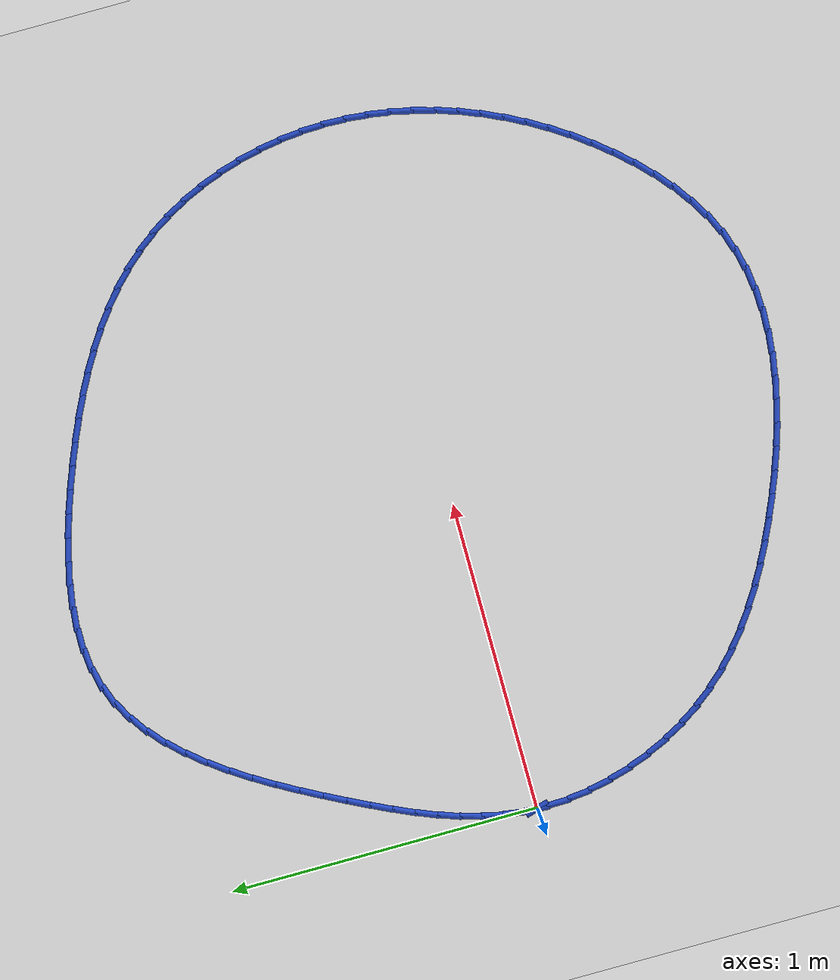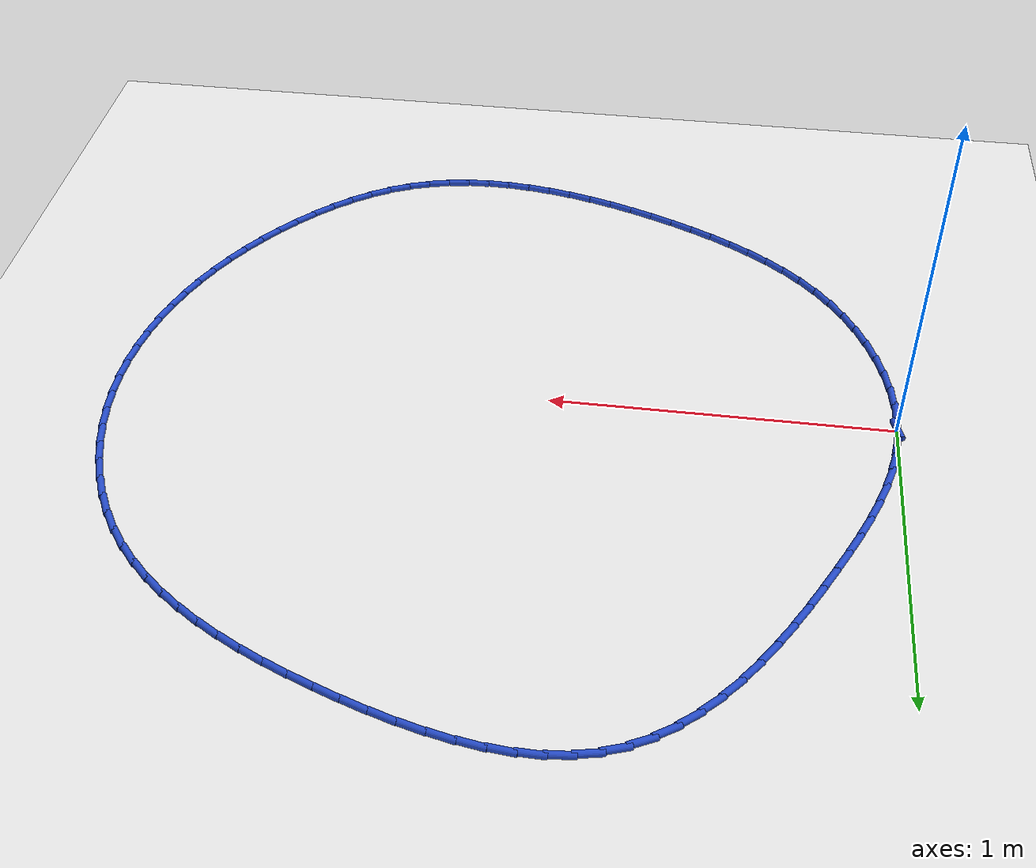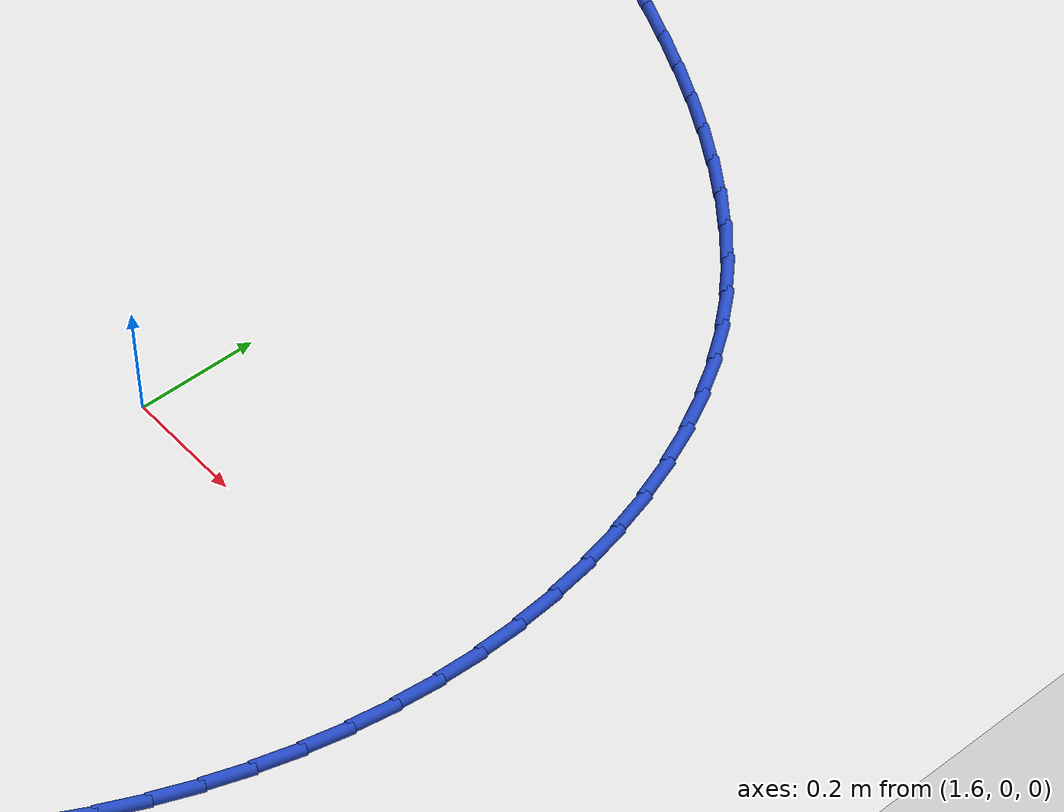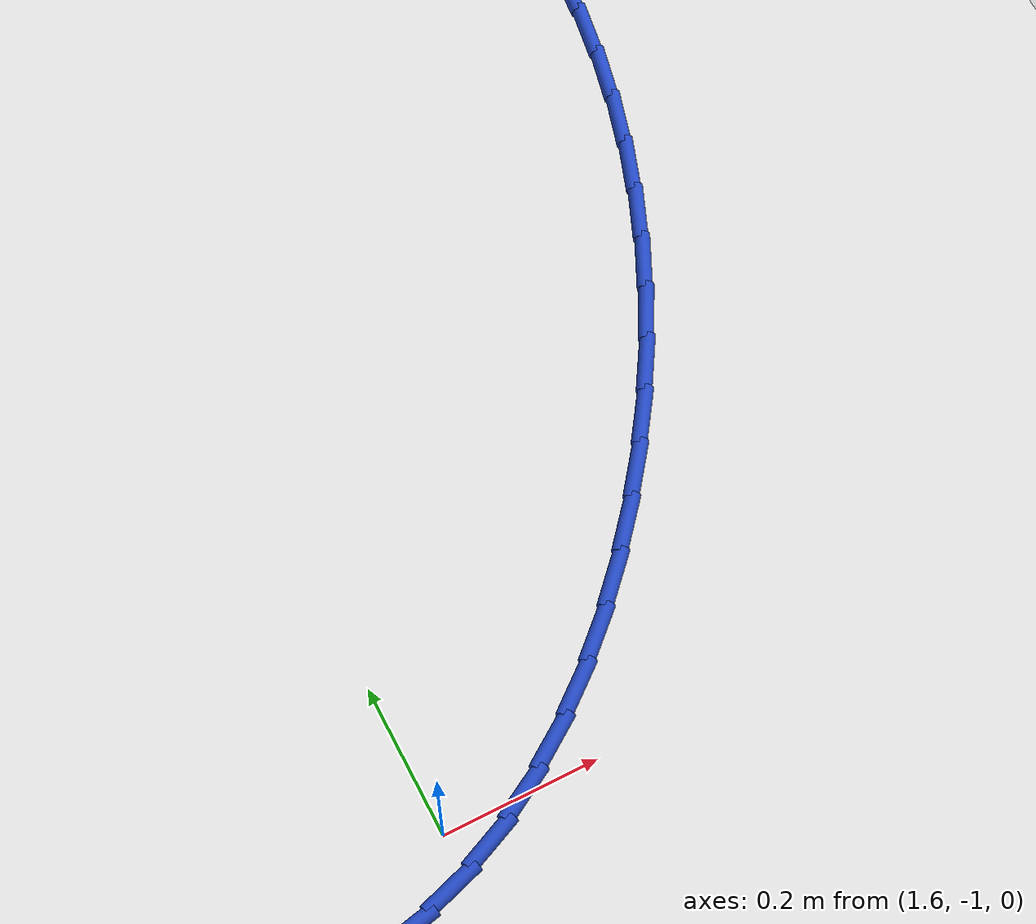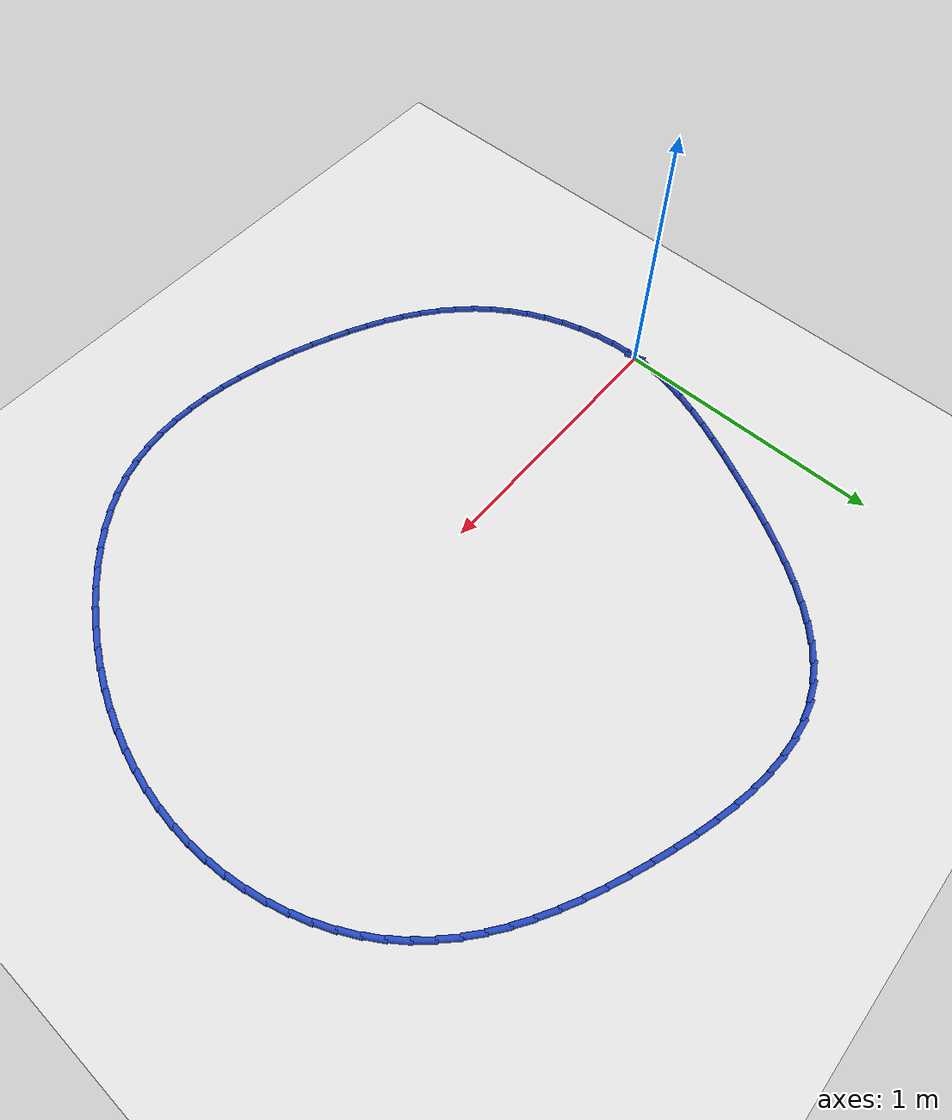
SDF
<sdf version="1.6">
 <world name="default">
  <light name="sun" type="directional">
   <pose>0 0 10 0 -0 0</pose>
   <diffuse>0.8 0.8 0.8 1</diffuse>
   <specular>0.2 0.2 0.2 1</specular>
   <attenuation>
    <range>1000</range>
    <constant>0.9</constant>
    <linear>0.01</linear>
    <quadratic>0.001</quadratic>
   </attenuation>
   <direction>-0.5 0.1 -0.9</direction>
  </light>
  <model name="ground_plane">
   <static>1</static>
   <link name="link">
    <collision name="collision">
     <geometry><plane><normal>0 0 1</normal><size>100 100</size></plane></geometry>
     <surface><friction><ode><mu>100</mu><mu2>50</mu2></ode></friction></surface>
    </collision>
    <visual name="visual">
     <cast_shadows>0</cast_shadows>
     <geometry><plane><normal>0 0 1</normal><size>100 100</size></plane></geometry>
     <material>
      <script><uri>file://media/materials/scripts/gazebo.material</uri><name>Gazebo/WhiteGlow</name></script>
     </material>
    </visual>
   </link>
  </model>
  <gravity>0 0 -9.8</gravity>
  <magnetic_field>6e-06 2.3e-05 -4.2e-05</magnetic_field>
  <atmosphere type="adiabatic"/>
  <physics name="default_physics" default="0" type="ode">
   <max_step_size>0.001</max_step_size>
   <real_time_factor>1</real_time_factor>
   <real_time_update_rate>1000</real_time_update_rate>
  </physics>
  <scene><ambient>0.4 0.4 0.4 1</ambient><background>0.7 0.7 0.7 1</background><shadows>1</shadows></scene>
  <spherical_coordinates>
   <surface_model>EARTH_WGS84</surface_model>
   <latitude_deg>0</latitude_deg>
   <longitude_deg>0</longitude_deg>
   <elevation>0</elevation>
   <heading_deg>0</heading_deg>
  </spherical_coordinates>
  <model name="line">
   <link name="link_0">
    <pose>-3.469446951953614e-17 1.3877787807814457e-17 0.01 0 1.57 1.497357220709746</pose>
    <collision name="collision">
     <geometry><cylinder><radius>0.01</radius><length>0.08</length></cylinder></geometry>
    </collision>
    <visual name="visual">
     <material>
      <script><name>Gazebo/Blue</name><uri>file://media/materials/scripts/gazebo.material</uri></script>
     </material>
     <geometry><cylinder><radius>0.01</radius><length>0.08</length></cylinder></geometry>
    </visual>
   </link>
   <link name="link_1">
    <pose>0.005112944435276254 0.06949634214892596 0.01 0 1.57 1.4149502216711805</pose>
    <collision name="collision">
     <geometry><cylinder><radius>0.01</radius><length>0.08</length></cylinder></geometry>
    </collision>
    <visual name="visual">
     <material>
      <script><name>Gazebo/Blue</name><uri>file://media/materials/scripts/gazebo.material</uri></script>
     </material>
     <geometry><cylinder><radius>0.01</radius><length>0.08</length></cylinder></geometry>
    </visual>
   </link>
   <link name="link_2">
    <pose>0.015867524407453468 0.1379444406406293 0.01 0 1.57 1.3409557161911774</pose>
    <collision name="collision">
     <geometry><cylinder><radius>0.01</radius><length>0.08</length></cylinder></geometry>
    </collision>
    <visual name="visual">
     <material>
      <script><name>Gazebo/Blue</name><uri>file://media/materials/scripts/gazebo.material</uri></script>
     </material>
     <geometry><cylinder><radius>0.01</radius><length>0.08</length></cylinder></geometry>
    </visual>
   </link>
   <link name="link_3">
    <pose>0.03169334723504481 0.20558331883823514 0.01 0 1.57 1.2765231127699361</pose>
    <collision name="collision">
     <geometry><cylinder><radius>0.01</radius><length>0.08</length></cylinder></geometry>
    </collision>
    <visual name="visual">
     <material>
      <script><name>Gazebo/Blue</name><uri>file://media/materials/scripts/gazebo.material</uri></script>
     </material>
     <geometry><cylinder><radius>0.01</radius><length>0.08</length></cylinder></geometry>
    </visual>
   </link>
   <link name="link_4">
    <pose>0.052020020236563505 0.27265200010486895 0.01 0 1.57 1.2221716225093329</pose>
    <collision name="collision">
     <geometry><cylinder><radius>0.01</radius><length>0.08</length></cylinder></geometry>
    </collision>
    <visual name="visual">
     <material>
      <script><name>Gazebo/Blue</name><uri>file://media/materials/scripts/gazebo.material</uri></script>
     </material>
     <geometry><cylinder><radius>0.01</radius><length>0.08</length></cylinder></geometry>
    </visual>
   </link>
   <link name="link_5">
    <pose>0.0762771507305227 0.33938950780365584 0.01 0 1.57 1.1779463275622852</pose>
    <collision name="collision">
     <geometry><cylinder><radius>0.01</radius><length>0.08</length></cylinder></geometry>
    </collision>
    <visual name="visual">
     <material>
      <script><name>Gazebo/Blue</name><uri>file://media/materials/scripts/gazebo.material</uri></script>
     </material>
     <geometry><cylinder><radius>0.01</radius><length>0.08</length></cylinder></geometry>
    </visual>
   </link>
   <link name="link_6">
    <pose>0.1038943460354356 0.40603486529772126 0.01 0 1.57 1.1435887500919193</pose>
    <collision name="collision">
     <geometry><cylinder><radius>0.01</radius><length>0.08</length></cylinder></geometry>
    </collision>
    <visual name="visual">
     <material>
      <script><name>Gazebo/Blue</name><uri>file://media/materials/scripts/gazebo.material</uri></script>
     </material>
     <geometry><cylinder><radius>0.01</radius><length>0.08</length></cylinder></geometry>
    </visual>
   </link>
   <link name="link_7">
    <pose>0.13430121346981547 0.4728270959501904 0.01 0 1.57 1.1186813584470081</pose>
    <collision name="collision">
     <geometry><cylinder><radius>0.01</radius><length>0.08</length></cylinder></geometry>
    </collision>
    <visual name="visual">
     <material>
      <script><name>Gazebo/Blue</name><uri>file://media/materials/scripts/gazebo.material</uri></script>
     </material>
     <geometry><cylinder><radius>0.01</radius><length>0.08</length></cylinder></geometry>
    </visual>
   </link>
   <link name="link_8">
    <pose>0.16692736035217537 0.5400052231241885 0.01 0 1.57 1.1026879173823485</pose>
    <collision name="collision">
     <geometry><cylinder><radius>0.01</radius><length>0.08</length></cylinder></geometry>
    </collision>
    <visual name="visual">
     <material>
      <script><name>Gazebo/Blue</name><uri>file://media/materials/scripts/gazebo.material</uri></script>
     </material>
     <geometry><cylinder><radius>0.01</radius><length>0.08</length></cylinder></geometry>
    </visual>
   </link>
   <link name="link_9">
    <pose>0.20120556996029393 0.6078038567172638 0.01 0 1.57 1.090042804169758</pose>
    <collision name="collision">
     <geometry><cylinder><radius>0.01</radius><length>0.08</length></cylinder></geometry>
    </collision>
    <visual name="visual">
     <material>
      <script><name>Gazebo/Blue</name><uri>file://media/materials/scripts/gazebo.material</uri></script>
     </material>
     <geometry><cylinder><radius>0.01</radius><length>0.08</length></cylinder></geometry>
    </visual>
   </link>
   <link name="link_10">
    <pose>0.23682640097173238 0.6760993895471342 0.01 0 1.57 1.0716911360729415</pose>
    <collision name="collision">
     <geometry><cylinder><radius>0.01</radius><length>0.08</length></cylinder></geometry>
    </collision>
    <visual name="visual">
     <material>
      <script><name>Gazebo/Blue</name><uri>file://media/materials/scripts/gazebo.material</uri></script>
     </material>
     <geometry><cylinder><radius>0.01</radius><length>0.08</length></cylinder></geometry>
    </visual>
   </link>
   <link name="link_11">
    <pose>0.2739243210483963 0.7441513371801761 0.01 0 1.57 1.0464488932622513</pose>
    <collision name="collision">
     <geometry><cylinder><radius>0.01</radius><length>0.08</length></cylinder></geometry>
    </collision>
    <visual name="visual">
     <material>
      <script><name>Gazebo/Blue</name><uri>file://media/materials/scripts/gazebo.material</uri></script>
     </material>
     <geometry><cylinder><radius>0.01</radius><length>0.08</length></cylinder></geometry>
    </visual>
   </link>
   <link name="link_12">
    <pose>0.31267768396399315 0.8111582289333871 0.01 0 1.57 1.0137221706889123</pose>
    <collision name="collision">
     <geometry><cylinder><radius>0.01</radius><length>0.08</length></cylinder></geometry>
    </collision>
    <visual name="visual">
     <material>
      <script><name>Gazebo/Blue</name><uri>file://media/materials/scripts/gazebo.material</uri></script>
     </material>
     <geometry><cylinder><radius>0.01</radius><length>0.08</length></cylinder></geometry>
    </visual>
   </link>
   <link name="link_13">
    <pose>0.3532648434922305 0.8763185941237659 0.01 0 1.57 0.9726260112574329</pose>
    <collision name="collision">
     <geometry><cylinder><radius>0.01</radius><length>0.08</length></cylinder></geometry>
    </collision>
    <visual name="visual">
     <material>
      <script><name>Gazebo/Blue</name><uri>file://media/materials/scripts/gazebo.material</uri></script>
     </material>
     <geometry><cylinder><radius>0.01</radius><length>0.08</length></cylinder></geometry>
    </visual>
   </link>
   <link name="link_14">
    <pose>0.3958641534068153 0.93883096206831 0.01 0 1.57 0.9219783647794094</pose>
    <collision name="collision">
     <geometry><cylinder><radius>0.01</radius><length>0.08</length></cylinder></geometry>
    </collision>
    <visual name="visual">
     <material>
      <script><name>Gazebo/Blue</name><uri>file://media/materials/scripts/gazebo.material</uri></script>
     </material>
     <geometry><cylinder><radius>0.01</radius><length>0.08</length></cylinder></geometry>
    </visual>
   </link>
   <link name="link_15">
    <pose>0.440653967481455 0.997893862084017 0.01 0 1.57 0.8603115671992023</pose>
    <collision name="collision">
     <geometry><cylinder><radius>0.01</radius><length>0.08</length></cylinder></geometry>
    </collision>
    <visual name="visual">
     <material>
      <script><name>Gazebo/Blue</name><uri>file://media/materials/scripts/gazebo.material</uri></script>
     </material>
     <geometry><cylinder><radius>0.01</radius><length>0.08</length></cylinder></geometry>
    </visual>
   </link>
   <link name="link_16">
    <pose>0.48781263948985715 1.0527058234878854 0.01 0 1.57 0.7859377316153163</pose>
    <collision name="collision">
     <geometry><cylinder><radius>0.01</radius><length>0.08</length></cylinder></geometry>
    </collision>
    <visual name="visual">
     <material>
      <script><name>Gazebo/Blue</name><uri>file://media/materials/scripts/gazebo.material</uri></script>
     </material>
     <geometry><cylinder><radius>0.01</radius><length>0.08</length></cylinder></geometry>
    </visual>
   </link>
   <link name="link_17">
    <pose>0.5375185232057291 1.1024653755969132 0.01 0 1.57 0.6971287341607988</pose>
    <collision name="collision">
     <geometry><cylinder><radius>0.01</radius><length>0.08</length></cylinder></geometry>
    </collision>
    <visual name="visual">
     <material>
      <script><name>Gazebo/Blue</name><uri>file://media/materials/scripts/gazebo.material</uri></script>
     </material>
     <geometry><cylinder><radius>0.01</radius><length>0.08</length></cylinder></geometry>
    </visual>
   </link>
   <link name="link_18">
    <pose>0.5899499724027781 1.1463710477280982 0.01 0 1.57 0.592494037783786</pose>
    <collision name="collision">
     <geometry><cylinder><radius>0.01</radius><length>0.08</length></cylinder></geometry>
    </collision>
    <visual name="visual">
     <material>
      <script><name>Gazebo/Blue</name><uri>file://media/materials/scripts/gazebo.material</uri></script>
     </material>
     <geometry><cylinder><radius>0.01</radius><length>0.08</length></cylinder></geometry>
    </visual>
   </link>
   <link name="link_19">
    <pose>0.6452853408547117 1.1836213691984383 0.01 0 1.57 0.4716224005688704</pose>
    <collision name="collision">
     <geometry><cylinder><radius>0.01</radius><length>0.08</length></cylinder></geometry>
    </collision>
    <visual name="visual">
     <material>
      <script><name>Gazebo/Blue</name><uri>file://media/materials/scripts/gazebo.material</uri></script>
     </material>
     <geometry><cylinder><radius>0.01</radius><length>0.08</length></cylinder></geometry>
    </visual>
   </link>
   <link name="link_20">
    <pose>0.7037029823352369 1.2134148693249314 0.01 0 1.57 0.3364123114576118</pose>
    <collision name="collision">
     <geometry><cylinder><radius>0.01</radius><length>0.08</length></cylinder></geometry>
    </collision>
    <visual name="visual">
     <material>
      <script><name>Gazebo/Blue</name><uri>file://media/materials/scripts/gazebo.material</uri></script>
     </material>
     <geometry><cylinder><radius>0.01</radius><length>0.08</length></cylinder></geometry>
    </visual>
   </link>
   <link name="link_21">
    <pose>0.7653686639161069 1.2349796888198117 0.01 0 1.57 0.2024400886195409</pose>
    <collision name="collision">
     <geometry><cylinder><radius>0.01</radius><length>0.08</length></cylinder></geometry>
    </collision>
    <visual name="visual">
     <material>
      <script><name>Gazebo/Blue</name><uri>file://media/materials/scripts/gazebo.material</uri></script>
     </material>
     <geometry><cylinder><radius>0.01</radius><length>0.08</length></cylinder></geometry>
    </visual>
   </link>
   <link name="link_22">
    <pose>0.830137972434228 1.2482736964497039 0.01 0 1.57 0.08493397025574667</pose>
    <collision name="collision">
     <geometry><cylinder><radius>0.01</radius><length>0.08</length></cylinder></geometry>
    </collision>
    <visual name="visual">
     <material>
      <script><name>Gazebo/Blue</name><uri>file://media/materials/scripts/gazebo.material</uri></script>
     </material>
     <geometry><cylinder><radius>0.01</radius><length>0.08</length></cylinder></geometry>
    </visual>
   </link>
   <link name="link_23">
    <pose>0.8975443674552408 1.2540125955577728 0.01 0 1.57 -0.015312787773298678</pose>
    <collision name="collision">
     <geometry><cylinder><radius>0.01</radius><length>0.08</length></cylinder></geometry>
    </collision>
    <visual name="visual">
     <material>
      <script><name>Gazebo/Blue</name><uri>file://media/materials/scripts/gazebo.material</uri></script>
     </material>
     <geometry><cylinder><radius>0.01</radius><length>0.08</length></cylinder></geometry>
    </visual>
   </link>
   <link name="link_24">
    <pose>0.9671063313656336 1.2529473247039258 0.01 0 1.57 -0.09959777807769028</pose>
    <collision name="collision">
     <geometry><cylinder><radius>0.01</radius><length>0.08</length></cylinder></geometry>
    </collision>
    <visual name="visual">
     <material>
      <script><name>Gazebo/Blue</name><uri>file://media/materials/scripts/gazebo.material</uri></script>
     </material>
     <geometry><cylinder><radius>0.01</radius><length>0.08</length></cylinder></geometry>
    </visual>
   </link>
   <link name="link_25">
    <pose>1.0383423465518948 1.2458288224480698 0.01 0 1.57 -0.16983826013356926</pose>
    <collision name="collision">
     <geometry><cylinder><radius>0.01</radius><length>0.08</length></cylinder></geometry>
    </collision>
    <visual name="visual">
     <material>
      <script><name>Gazebo/Blue</name><uri>file://media/materials/scripts/gazebo.material</uri></script>
     </material>
     <geometry><cylinder><radius>0.01</radius><length>0.08</length></cylinder></geometry>
    </visual>
   </link>
   <link name="link_26">
    <pose>1.110770895400512 1.2334080273501113 0.01 0 1.57 -0.228015988085428</pose>
    <collision name="collision">
     <geometry><cylinder><radius>0.01</radius><length>0.08</length></cylinder></geometry>
    </collision>
    <visual name="visual">
     <material>
      <script><name>Gazebo/Blue</name><uri>file://media/materials/scripts/gazebo.material</uri></script>
     </material>
     <geometry><cylinder><radius>0.01</radius><length>0.08</length></cylinder></geometry>
    </visual>
   </link>
   <link name="link_27">
    <pose>1.1839104602979729 1.2164358779699578 0.01 0 1.57 -0.27590351428085297</pose>
    <collision name="collision">
     <geometry><cylinder><radius>0.01</radius><length>0.08</length></cylinder></geometry>
    </collision>
    <visual name="visual">
     <material>
      <script><name>Gazebo/Blue</name><uri>file://media/materials/scripts/gazebo.material</uri></script>
     </material>
     <geometry><cylinder><radius>0.01</radius><length>0.08</length></cylinder></geometry>
    </visual>
   </link>
   <link name="link_28">
    <pose>1.2572795236307657 1.1956633128675156 0.01 0 1.57 -0.31496159834360293</pose>
    <collision name="collision">
     <geometry><cylinder><radius>0.01</radius><length>0.08</length></cylinder></geometry>
    </collision>
    <visual name="visual">
     <material>
      <script><name>Gazebo/Blue</name><uri>file://media/materials/scripts/gazebo.material</uri></script>
     </material>
     <geometry><cylinder><radius>0.01</radius><length>0.08</length></cylinder></geometry>
    </visual>
   </link>
   <link name="link_29">
    <pose>1.3303965677853775 1.171841270602692 0.01 0 1.57 -0.34631998407269393</pose>
    <collision name="collision">
     <geometry><cylinder><radius>0.01</radius><length>0.08</length></cylinder></geometry>
    </collision>
    <visual name="visual">
     <material>
      <script><name>Gazebo/Blue</name><uri>file://media/materials/scripts/gazebo.material</uri></script>
     </material>
     <geometry><cylinder><radius>0.01</radius><length>0.08</length></cylinder></geometry>
    </visual>
   </link>
   <link name="link_30">
    <pose>1.4027800751482982 1.1457206897353935 0.01 0 1.57 -0.37155800547552276</pose>
    <collision name="collision">
     <geometry><cylinder><radius>0.01</radius><length>0.08</length></cylinder></geometry>
    </collision>
    <visual name="visual">
     <material>
      <script><name>Gazebo/Blue</name><uri>file://media/materials/scripts/gazebo.material</uri></script>
     </material>
     <geometry><cylinder><radius>0.01</radius><length>0.08</length></cylinder></geometry>
    </visual>
   </link>
   <link name="link_31">
    <pose>1.4739649601254496 1.117983026968685 0.01 0 1.57 -0.397785231959348</pose>
    <collision name="collision">
     <geometry><cylinder><radius>0.01</radius><length>0.08</length></cylinder></geometry>
    </collision>
    <visual name="visual">
     <material>
      <script><name>Gazebo/Blue</name><uri>file://media/materials/scripts/gazebo.material</uri></script>
     </material>
     <geometry><cylinder><radius>0.01</radius><length>0.08</length></cylinder></geometry>
    </visual>
   </link>
   <link name="link_32">
    <pose>1.543627531716801 1.0887118600303398 0.01 0 1.57 -0.4286710574076525</pose>
    <collision name="collision">
     <geometry><cylinder><radius>0.01</radius><length>0.08</length></cylinder></geometry>
    </collision>
    <visual name="visual">
     <material>
      <script><name>Gazebo/Blue</name><uri>file://media/materials/scripts/gazebo.material</uri></script>
     </material>
     <geometry><cylinder><radius>0.01</radius><length>0.08</length></cylinder></geometry>
    </visual>
   </link>
   <link name="link_33">
    <pose>1.6115162190551586 1.057685810780409 0.01 0 1.57 -0.4645319642638702</pose>
    <collision name="collision">
     <geometry><cylinder><radius>0.01</radius><length>0.08</length></cylinder></geometry>
    </collision>
    <visual name="visual">
     <material>
      <script><name>Gazebo/Blue</name><uri>file://media/materials/scripts/gazebo.material</uri></script>
     </material>
     <geometry><cylinder><radius>0.01</radius><length>0.08</length></cylinder></geometry>
    </visual>
   </link>
   <link name="link_34">
    <pose>1.677380027222068 1.0246810657125638 0.01 0 1.57 -0.5056627962812064</pose>
    <collision name="collision">
     <geometry><cylinder><radius>0.01</radius><length>0.08</length></cylinder></geometry>
    </collision>
    <visual name="visual">
     <material>
      <script><name>Gazebo/Blue</name><uri>file://media/materials/scripts/gazebo.material</uri></script>
     </material>
     <geometry><cylinder><radius>0.01</radius><length>0.08</length></cylinder></geometry>
    </visual>
   </link>
   <link name="link_35">
    <pose>1.7409679612990714 0.9894738113204751 0.01 0 1.57 -0.5523381580450226</pose>
    <collision name="collision">
     <geometry><cylinder><radius>0.01</radius><length>0.08</length></cylinder></geometry>
    </collision>
    <visual name="visual">
     <material>
      <script><name>Gazebo/Blue</name><uri>file://media/materials/scripts/gazebo.material</uri></script>
     </material>
     <geometry><cylinder><radius>0.01</radius><length>0.08</length></cylinder></geometry>
    </visual>
   </link>
   <link name="link_36">
    <pose>1.8020290263677132 0.951840234097814 0.01 0 1.57 -0.6047764910300117</pose>
    <collision name="collision">
     <geometry><cylinder><radius>0.01</radius><length>0.08</length></cylinder></geometry>
    </collision>
    <visual name="visual">
     <material>
      <script><name>Gazebo/Blue</name><uri>file://media/materials/scripts/gazebo.material</uri></script>
     </material>
     <geometry><cylinder><radius>0.01</radius><length>0.08</length></cylinder></geometry>
    </visual>
   </link>
   <link name="link_37">
    <pose>1.860312227509537 0.9115565205382516 0.01 0 1.57 -0.6630929401386013</pose>
    <collision name="collision">
     <geometry><cylinder><radius>0.01</radius><length>0.08</length></cylinder></geometry>
    </collision>
    <visual name="visual">
     <material>
      <script><name>Gazebo/Blue</name><uri>file://media/materials/scripts/gazebo.material</uri></script>
     </material>
     <geometry><cylinder><radius>0.01</radius><length>0.08</length></cylinder></geometry>
    </visual>
   </link>
   <link name="link_38">
    <pose>1.9155665698060866 0.8683988571354594 0.01 0 1.57 -0.7272426321088961</pose>
    <collision name="collision">
     <geometry><cylinder><radius>0.01</radius><length>0.08</length></cylinder></geometry>
    </collision>
    <visual name="visual">
     <material>
      <script><name>Gazebo/Blue</name><uri>file://media/materials/scripts/gazebo.material</uri></script>
     </material>
     <geometry><cylinder><radius>0.01</radius><length>0.08</length></cylinder></geometry>
    </visual>
   </link>
   <link name="link_39">
    <pose>1.967541058338906 0.8221434303831081 0.01 0 1.57 -0.7969601488595083</pose>
    <collision name="collision">
     <geometry><cylinder><radius>0.01</radius><length>0.08</length></cylinder></geometry>
    </collision>
    <visual name="visual">
     <material>
      <script><name>Gazebo/Blue</name><uri>file://media/materials/scripts/gazebo.material</uri></script>
     </material>
     <geometry><cylinder><radius>0.01</radius><length>0.08</length></cylinder></geometry>
    </visual>
   </link>
   <link name="link_40">
    <pose>2.0159846981895386 0.772566426774869 0.01 0 1.57 -0.8717063824530455</pose>
    <collision name="collision">
     <geometry><cylinder><radius>0.01</radius><length>0.08</length></cylinder></geometry>
    </collision>
    <visual name="visual">
     <material>
      <script><name>Gazebo/Blue</name><uri>file://media/materials/scripts/gazebo.material</uri></script>
     </material>
     <geometry><cylinder><radius>0.01</radius><length>0.08</length></cylinder></geometry>
    </visual>
   </link>
   <link name="link_41">
    <pose>2.0606464944395277 0.7194440328044127 0.01 0 1.57 -0.9503323388306206</pose>
    <collision name="collision">
     <geometry><cylinder><radius>0.01</radius><length>0.08</length></cylinder></geometry>
    </collision>
    <visual name="visual">
     <material>
      <script><name>Gazebo/Blue</name><uri>file://media/materials/scripts/gazebo.material</uri></script>
     </material>
     <geometry><cylinder><radius>0.01</radius><length>0.08</length></cylinder></geometry>
    </visual>
   </link>
   <link name="link_42">
    <pose>2.1012827641724385 0.6625790484516565 0.01 0 1.57 -1.027784058139645</pose>
    <collision name="collision">
     <geometry><cylinder><radius>0.01</radius><length>0.08</length></cylinder></geometry>
    </collision>
    <visual name="visual">
     <material>
      <script><name>Gazebo/Blue</name><uri>file://media/materials/scripts/gazebo.material</uri></script>
     </material>
     <geometry><cylinder><radius>0.01</radius><length>0.08</length></cylinder></geometry>
    </visual>
   </link>
   <link name="link_43">
    <pose>2.13775322782554 0.6021506307767924 0.01 0 1.57 -1.1011963987930946</pose>
    <collision name="collision">
     <geometry><cylinder><radius>0.01</radius><length>0.08</length></cylinder></geometry>
    </collision>
    <visual name="visual">
     <material>
      <script><name>Gazebo/Blue</name><uri>file://media/materials/scripts/gazebo.material</uri></script>
     </material>
     <geometry><cylinder><radius>0.01</radius><length>0.08</length></cylinder></geometry>
    </visual>
   </link>
   <link name="link_44">
    <pose>2.1699942419033302 0.5386168690552036 0.01 0 1.57 -1.1711601496683604</pose>
    <collision name="collision">
     <geometry><cylinder><radius>0.01</radius><length>0.08</length></cylinder></geometry>
    </collision>
    <visual name="visual">
     <material>
      <script><name>Gazebo/Blue</name><uri>file://media/materials/scripts/gazebo.material</uri></script>
     </material>
     <geometry><cylinder><radius>0.01</radius><length>0.08</length></cylinder></geometry>
    </visual>
   </link>
   <link name="link_45">
    <pose>2.1979439703976764 0.4724424312721847 0.01 0 1.57 -1.2383774836003916</pose>
    <collision name="collision">
     <geometry><cylinder><radius>0.01</radius><length>0.08</length></cylinder></geometry>
    </collision>
    <visual name="visual">
     <material>
      <script><name>Gazebo/Blue</name><uri>file://media/materials/scripts/gazebo.material</uri></script>
     </material>
     <geometry><cylinder><radius>0.01</radius><length>0.08</length></cylinder></geometry>
    </visual>
   </link>
   <link name="link_46">
    <pose>2.221540577300443 0.40409198541303026 0.01 0 1.57 -1.3035629203778272</pose>
    <collision name="collision">
     <geometry><cylinder><radius>0.01</radius><length>0.08</length></cylinder></geometry>
    </collision>
    <visual name="visual">
     <material>
      <script><name>Gazebo/Blue</name><uri>file://media/materials/scripts/gazebo.material</uri></script>
     </material>
     <geometry><cylinder><radius>0.01</radius><length>0.08</length></cylinder></geometry>
    </visual>
   </link>
   <link name="link_47">
    <pose>2.2407222266034976 0.3340301994630345 0.01 0 1.57 -1.3674322520811388</pose>
    <collision name="collision">
     <geometry><cylinder><radius>0.01</radius><length>0.08</length></cylinder></geometry>
    </collision>
    <visual name="visual">
     <material>
      <script><name>Gazebo/Blue</name><uri>file://media/materials/scripts/gazebo.material</uri></script>
     </material>
     <geometry><cylinder><radius>0.01</radius><length>0.08</length></cylinder></geometry>
    </visual>
   </link>
   <link name="link_48">
    <pose>2.255427082298704 0.2627217414074924 0.01 0 1.57 -1.4306997375939157</pose>
    <collision name="collision">
     <geometry><cylinder><radius>0.01</radius><length>0.08</length></cylinder></geometry>
    </collision>
    <visual name="visual">
     <material>
      <script><name>Gazebo/Blue</name><uri>file://media/materials/scripts/gazebo.material</uri></script>
     </material>
     <geometry><cylinder><radius>0.01</radius><length>0.08</length></cylinder></geometry>
    </visual>
   </link>
   <link name="link_49">
    <pose>2.26559330837793 0.19063127923169762 0.01 0 1.57 -1.4940801832172044</pose>
    <collision name="collision">
     <geometry><cylinder><radius>0.01</radius><length>0.08</length></cylinder></geometry>
    </collision>
    <visual name="visual">
     <material>
      <script><name>Gazebo/Blue</name><uri>file://media/materials/scripts/gazebo.material</uri></script>
     </material>
     <geometry><cylinder><radius>0.01</radius><length>0.08</length></cylinder></geometry>
    </visual>
   </link>
   <link name="link_50">
    <pose>2.2711590799324424 0.11822346335194556 0.01 0 1.57 -1.5577598737778093</pose>
    <collision name="collision">
     <geometry><cylinder><radius>0.01</radius><length>0.08</length></cylinder></geometry>
    </collision>
    <visual name="visual">
     <material>
      <script><name>Gazebo/Blue</name><uri>file://media/materials/scripts/gazebo.material</uri></script>
     </material>
     <geometry><cylinder><radius>0.01</radius><length>0.08</length></cylinder></geometry>
    </visual>
   </link>
   <link name="link_51">
    <pose>2.2721019671324045 0.045900586581563624 0.01 0 1.57 1.5212157647154172</pose>
    <collision name="collision">
     <geometry><cylinder><radius>0.01</radius><length>0.08</length></cylinder></geometry>
    </collision>
    <visual name="visual">
     <material>
      <script><name>Gazebo/Blue</name><uri>file://media/materials/scripts/gazebo.material</uri></script>
     </material>
     <geometry><cylinder><radius>0.01</radius><length>0.08</length></cylinder></geometry>
    </visual>
   </link>
   <link name="link_52">
    <pose>2.2685273550193674 -0.026137373611771944 0.01 0 1.57 1.4600568879063671</pose>
    <collision name="collision">
     <geometry><cylinder><radius>0.01</radius><length>0.08</length></cylinder></geometry>
    </collision>
    <visual name="visual">
     <material>
      <script><name>Gazebo/Blue</name><uri>file://media/materials/scripts/gazebo.material</uri></script>
     </material>
     <geometry><cylinder><radius>0.01</radius><length>0.08</length></cylinder></geometry>
    </visual>
   </link>
   <link name="link_53">
    <pose>2.260566504404744 -0.09773139794675702 0.01 0 1.57 1.4003895984285069</pose>
    <collision name="collision">
     <geometry><cylinder><radius>0.01</radius><length>0.08</length></cylinder></geometry>
    </collision>
    <visual name="visual">
     <material>
      <script><name>Gazebo/Blue</name><uri>file://media/materials/scripts/gazebo.material</uri></script>
     </material>
     <geometry><cylinder><radius>0.01</radius><length>0.08</length></cylinder></geometry>
    </visual>
   </link>
   <link name="link_54">
    <pose>2.2483506760999497 -0.16872246714208772 0.01 0 1.57 1.34220246124505</pose>
    <collision name="collision">
     <geometry><cylinder><radius>0.01</radius><length>0.08</length></cylinder></geometry>
    </collision>
    <visual name="visual">
     <material>
      <script><name>Gazebo/Blue</name><uri>file://media/materials/scripts/gazebo.material</uri></script>
     </material>
     <geometry><cylinder><radius>0.01</radius><length>0.08</length></cylinder></geometry>
    </visual>
   </link>
   <link name="link_55">
    <pose>2.232011130916397 -0.23895156191645997 0.01 0 1.57 1.285445319129078</pose>
    <collision name="collision">
     <geometry><cylinder><radius>0.01</radius><length>0.08</length></cylinder></geometry>
    </collision>
    <visual name="visual">
     <material>
      <script><name>Gazebo/Blue</name><uri>file://media/materials/scripts/gazebo.material</uri></script>
     </material>
     <geometry><cylinder><radius>0.01</radius><length>0.08</length></cylinder></geometry>
    </visual>
   </link>
   <link name="link_56">
    <pose>2.211679129665498 -0.3082596629885697 0.01 0 1.57 1.2300356994159696</pose>
    <collision name="collision">
     <geometry><cylinder><radius>0.01</radius><length>0.08</length></cylinder></geometry>
    </collision>
    <visual name="visual">
     <material>
      <script><name>Gazebo/Blue</name><uri>file://media/materials/scripts/gazebo.material</uri></script>
     </material>
     <geometry><cylinder><radius>0.01</radius><length>0.08</length></cylinder></geometry>
    </visual>
   </link>
   <link name="link_57">
    <pose>2.1874859331586682 -0.3764877510771131 0.01 0 1.57 1.1758649903543876</pose>
    <collision name="collision">
     <geometry><cylinder><radius>0.01</radius><length>0.08</length></cylinder></geometry>
    </collision>
    <visual name="visual">
     <material>
      <script><name>Gazebo/Blue</name><uri>file://media/materials/scripts/gazebo.material</uri></script>
     </material>
     <geometry><cylinder><radius>0.01</radius><length>0.08</length></cylinder></geometry>
    </visual>
   </link>
   <link name="link_58">
    <pose>2.1595628022073203 -0.44347680690078517 0.01 0 1.57 1.1228040791655511</pose>
    <collision name="collision">
     <geometry><cylinder><radius>0.01</radius><length>0.08</length></cylinder></geometry>
    </collision>
    <visual name="visual">
     <material>
      <script><name>Gazebo/Blue</name><uri>file://media/materials/scripts/gazebo.material</uri></script>
     </material>
     <geometry><cylinder><radius>0.01</radius><length>0.08</length></cylinder></geometry>
    </visual>
   </link>
   <link name="link_59">
    <pose>2.1280409976228665 -0.5090678111782836 0.01 0 1.57 1.0707082901323073</pose>
    <collision name="collision">
     <geometry><cylinder><radius>0.01</radius><length>0.08</length></cylinder></geometry>
    </collision>
    <visual name="visual">
     <material>
      <script><name>Gazebo/Blue</name><uri>file://media/materials/scripts/gazebo.material</uri></script>
     </material>
     <geometry><cylinder><radius>0.01</radius><length>0.08</length></cylinder></geometry>
    </visual>
   </link>
   <link name="link_60">
    <pose>2.093051780216723 -0.5731017446283035 0.01 0 1.57 1.0194215757724663</pose>
    <collision name="collision">
     <geometry><cylinder><radius>0.01</radius><length>0.08</length></cylinder></geometry>
    </collision>
    <visual name="visual">
     <material>
      <script><name>Gazebo/Blue</name><uri>file://media/materials/scripts/gazebo.material</uri></script>
     </material>
     <geometry><cylinder><radius>0.01</radius><length>0.08</length></cylinder></geometry>
    </visual>
   </link>
   <link name="link_61">
    <pose>2.0547264108003005 -0.6354195879695411 0.01 0 1.57 0.96877999625587</pose>
    <collision name="collision">
     <geometry><cylinder><radius>0.01</radius><length>0.08</length></cylinder></geometry>
    </collision>
    <visual name="visual">
     <material>
      <script><name>Gazebo/Blue</name><uri>file://media/materials/scripts/gazebo.material</uri></script>
     </material>
     <geometry><cylinder><radius>0.01</radius><length>0.08</length></cylinder></geometry>
    </visual>
   </link>
   <link name="link_62">
    <pose>2.0131961501850135 -0.6958623219206921 0.01 0 1.57 0.9186145758540207</pose>
    <collision name="collision">
     <geometry><cylinder><radius>0.01</radius><length>0.08</length></cylinder></geometry>
    </collision>
    <visual name="visual">
     <material>
      <script><name>Gazebo/Blue</name><uri>file://media/materials/scripts/gazebo.material</uri></script>
     </material>
     <geometry><cylinder><radius>0.01</radius><length>0.08</length></cylinder></geometry>
    </visual>
   </link>
   <link name="link_63">
    <pose>1.9685922591822766 -0.7542709272004527 0.01 0 1.57 0.8682503302612505</pose>
    <collision name="collision">
     <geometry><cylinder><radius>0.01</radius><length>0.08</length></cylinder></geometry>
    </collision>
    <visual name="visual">
     <material>
      <script><name>Gazebo/Blue</name><uri>file://media/materials/scripts/gazebo.material</uri></script>
     </material>
     <geometry><cylinder><radius>0.01</radius><length>0.08</length></cylinder></geometry>
    </visual>
   </link>
   <link name="link_64">
    <pose>1.9210421197919867 -0.8104336149700809 0.01 0 1.57 0.8137099144200787</pose>
    <collision name="collision">
     <geometry><cylinder><radius>0.01</radius><length>0.08</length></cylinder></geometry>
    </collision>
    <visual name="visual">
     <material>
      <script><name>Gazebo/Blue</name><uri>file://media/materials/scripts/gazebo.material</uri></script>
     </material>
     <geometry><cylinder><radius>0.01</radius><length>0.08</length></cylinder></geometry>
    </visual>
   </link>
   <link name="link_65">
    <pose>1.8706458342701318 -0.8637674672426731 0.01 0 1.57 0.752459528698455</pose>
    <collision name="collision">
     <geometry><cylinder><radius>0.01</radius><length>0.08</length></cylinder></geometry>
    </collision>
    <visual name="visual">
     <material>
      <script><name>Gazebo/Blue</name><uri>file://media/materials/scripts/gazebo.material</uri></script>
     </material>
     <geometry><cylinder><radius>0.01</radius><length>0.08</length></cylinder></geometry>
    </visual>
   </link>
   <link name="link_66">
    <pose>1.8174918004502807 -0.9135303324133316 0.01 0 1.57 0.683314707117583</pose>
    <collision name="collision">
     <geometry><cylinder><radius>0.01</radius><length>0.08</length></cylinder></geometry>
    </collision>
    <visual name="visual">
     <material>
      <script><name>Gazebo/Blue</name><uri>file://media/materials/scripts/gazebo.material</uri></script>
     </material>
     <geometry><cylinder><radius>0.01</radius><length>0.08</length></cylinder></geometry>
    </visual>
   </link>
   <link name="link_67">
    <pose>1.761668371271479 -0.9589794481065123 0.01 0 1.57 0.6050669307451473</pose>
    <collision name="collision">
     <geometry><cylinder><radius>0.01</radius><length>0.08</length></cylinder></geometry>
    </collision>
    <visual name="visual">
     <material>
      <script><name>Gazebo/Blue</name><uri>file://media/materials/scripts/gazebo.material</uri></script>
     </material>
     <geometry><cylinder><radius>0.01</radius><length>0.08</length></cylinder></geometry>
    </visual>
   </link>
   <link name="link_68">
    <pose>1.703263899672771 -0.9993720519466713 0.01 0 1.57 0.5166041410136707</pose>
    <collision name="collision">
     <geometry><cylinder><radius>0.01</radius><length>0.08</length></cylinder></geometry>
    </collision>
    <visual name="visual">
     <material>
      <script><name>Gazebo/Blue</name><uri>file://media/materials/scripts/gazebo.material</uri></script>
     </material>
     <geometry><cylinder><radius>0.01</radius><length>0.08</length></cylinder></geometry>
    </visual>
   </link>
   <link name="link_69">
    <pose>1.6423667385932026 -1.033965381558265 0.01 0 1.57 0.4171391292598839</pose>
    <collision name="collision">
     <geometry><cylinder><radius>0.01</radius><length>0.08</length></cylinder></geometry>
    </collision>
    <visual name="visual">
     <material>
      <script><name>Gazebo/Blue</name><uri>file://media/materials/scripts/gazebo.material</uri></script>
     </material>
     <geometry><cylinder><radius>0.01</radius><length>0.08</length></cylinder></geometry>
    </visual>
   </link>
   <link name="link_70">
    <pose>1.5790653261845227 -1.062017118215294 0.01 0 1.57 0.3106756877655508</pose>
    <collision name="collision">
     <geometry><cylinder><radius>0.01</radius><length>0.08</length></cylinder></geometry>
    </collision>
    <visual name="visual">
     <material>
      <script><name>Gazebo/Blue</name><uri>file://media/materials/scripts/gazebo.material</uri></script>
     </material>
     <geometry><cylinder><radius>0.01</radius><length>0.08</length></cylinder></geometry>
    </visual>
   </link>
   <link name="link_71">
    <pose>1.5135023885397567 -1.083067586731271 0.01 0 1.57 0.2094630879498858</pose>
    <collision name="collision">
     <geometry><cylinder><radius>0.01</radius><length>0.08</length></cylinder></geometry>
    </collision>
    <visual name="visual">
     <material>
      <script><name>Gazebo/Blue</name><uri>file://media/materials/scripts/gazebo.material</uri></script>
     </material>
     <geometry><cylinder><radius>0.01</radius><length>0.08</length></cylinder></geometry>
    </visual>
   </link>
   <link name="link_72">
    <pose>1.4459679752391958 -1.0974241336729196 0.01 0 1.57 0.11652005605490191</pose>
    <collision name="collision">
     <geometry><cylinder><radius>0.01</radius><length>0.08</length></cylinder></geometry>
    </collision>
    <visual name="visual">
     <material>
      <script><name>Gazebo/Blue</name><uri>file://media/materials/scripts/gazebo.material</uri></script>
     </material>
     <geometry><cylinder><radius>0.01</radius><length>0.08</length></cylinder></geometry>
    </visual>
   </link>
   <link name="link_73">
    <pose>1.3767768868897121 -1.1055229688055763 0.01 0 1.57 0.032276288041824336</pose>
    <collision name="collision">
     <geometry><cylinder><radius>0.01</radius><length>0.08</length></cylinder></geometry>
    </collision>
    <visual name="visual">
     <material>
      <script><name>Gazebo/Blue</name><uri>file://media/materials/scripts/gazebo.material</uri></script>
     </material>
     <geometry><cylinder><radius>0.01</radius><length>0.08</length></cylinder></geometry>
    </visual>
   </link>
   <link name="link_74">
    <pose>1.3062439240981782 -1.1078003018945792 0.01 0 1.57 -0.043404215103367866</pose>
    <collision name="collision">
     <geometry><cylinder><radius>0.01</radius><length>0.08</length></cylinder></geometry>
    </collision>
    <visual name="visual">
     <material>
      <script><name>Gazebo/Blue</name><uri>file://media/materials/scripts/gazebo.material</uri></script>
     </material>
     <geometry><cylinder><radius>0.01</radius><length>0.08</length></cylinder></geometry>
    </visual>
   </link>
   <link name="link_75">
    <pose>1.2346838874714652 -1.1046923427052653 0.01 0 1.57 -0.11102329951605973</pose>
    <collision name="collision">
     <geometry><cylinder><radius>0.01</radius><length>0.08</length></cylinder></geometry>
    </collision>
    <visual name="visual">
     <material>
      <script><name>Gazebo/Blue</name><uri>file://media/materials/scripts/gazebo.material</uri></script>
     </material>
     <geometry><cylinder><radius>0.01</radius><length>0.08</length></cylinder></geometry>
    </visual>
   </link>
   <link name="link_76">
    <pose>1.1624115776164454 -1.0966353010029717 0.01 0 1.57 -0.1712782797466912</pose>
    <collision name="collision">
     <geometry><cylinder><radius>0.01</radius><length>0.08</length></cylinder></geometry>
    </collision>
    <visual name="visual">
     <material>
      <script><name>Gazebo/Blue</name><uri>file://media/materials/scripts/gazebo.material</uri></script>
     </material>
     <geometry><cylinder><radius>0.01</radius><length>0.08</length></cylinder></geometry>
    </visual>
   </link>
   <link name="link_77">
    <pose>1.0897417951399897 -1.0840653865530356 0.01 0 1.57 -0.22493903639254256</pose>
    <collision name="collision">
     <geometry><cylinder><radius>0.01</radius><length>0.08</length></cylinder></geometry>
    </collision>
    <visual name="visual">
     <material>
      <script><name>Gazebo/Blue</name><uri>file://media/materials/scripts/gazebo.material</uri></script>
     </material>
     <geometry><cylinder><radius>0.01</radius><length>0.08</length></cylinder></geometry>
    </visual>
   </link>
   <link name="link_78">
    <pose>1.0169893406489705 -1.0674188091207941 0.01 0 1.57 -0.2727700785808833</pose>
    <collision name="collision">
     <geometry><cylinder><radius>0.01</radius><length>0.08</length></cylinder></geometry>
    </collision>
    <visual name="visual">
     <material>
      <script><name>Gazebo/Blue</name><uri>file://media/materials/scripts/gazebo.material</uri></script>
     </material>
     <geometry><cylinder><radius>0.01</radius><length>0.08</length></cylinder></geometry>
    </visual>
   </link>
   <link name="link_79">
    <pose>0.9444690147502596 -1.047131778471585 0.01 0 1.57 -0.3154870498823673</pose>
    <collision name="collision">
     <geometry><cylinder><radius>0.01</radius><length>0.08</length></cylinder></geometry>
    </collision>
    <visual name="visual">
     <material>
      <script><name>Gazebo/Blue</name><uri>file://media/materials/scripts/gazebo.material</uri></script>
     </material>
     <geometry><cylinder><radius>0.01</radius><length>0.08</length></cylinder></geometry>
    </visual>
   </link>
   <link name="link_80">
    <pose>0.8724956180507287 -1.0236405043707455 0.01 0 1.57 -0.3537364638019498</pose>
    <collision name="collision">
     <geometry><cylinder><radius>0.01</radius><length>0.08</length></cylinder></geometry>
    </collision>
    <visual name="visual">
     <material>
      <script><name>Gazebo/Blue</name><uri>file://media/materials/scripts/gazebo.material</uri></script>
     </material>
     <geometry><cylinder><radius>0.01</radius><length>0.08</length></cylinder></geometry>
    </visual>
   </link>
   <link name="link_81">
    <pose>0.8013839511572494 -0.9973811965836121 0.01 0 1.57 -0.3880896785265639</pose>
    <collision name="collision">
     <geometry><cylinder><radius>0.01</radius><length>0.08</length></cylinder></geometry>
    </collision>
    <visual name="visual">
     <material>
      <script><name>Gazebo/Blue</name><uri>file://media/materials/scripts/gazebo.material</uri></script>
     </material>
     <geometry><cylinder><radius>0.01</radius><length>0.08</length></cylinder></geometry>
    </visual>
   </link>
   <link name="link_82">
    <pose>0.7314488146766934 -0.9687900648755228 0.01 0 1.57 -0.41914895276784986</pose>
    <collision name="collision">
     <geometry><cylinder><radius>0.01</radius><length>0.08</length></cylinder></geometry>
    </collision>
    <visual name="visual">
     <material>
      <script><name>Gazebo/Blue</name><uri>file://media/materials/scripts/gazebo.material</uri></script>
     </material>
     <geometry><cylinder><radius>0.01</radius><length>0.08</length></cylinder></geometry>
    </visual>
   </link>
   <link name="link_83">
    <pose>0.6630046438163352 -0.9382946163823322 0.01 0 1.57 -0.4511147950787698</pose>
    <collision name="collision">
     <geometry><cylinder><radius>0.01</radius><length>0.08</length></cylinder></geometry>
    </collision>
    <visual name="visual">
     <material>
      <script><name>Gazebo/Blue</name><uri>file://media/materials/scripts/gazebo.material</uri></script>
     </material>
     <geometry><cylinder><radius>0.01</radius><length>0.08</length></cylinder></geometry>
    </visual>
   </link>
   <link name="link_84">
    <pose>0.5963526042078273 -0.9060063201252484 0.01 0 1.57 -0.48908323832762407</pose>
    <collision name="collision">
     <geometry><cylinder><radius>0.01</radius><length>0.08</length></cylinder></geometry>
    </collision>
    <visual name="visual">
     <material>
      <script><name>Gazebo/Blue</name><uri>file://media/materials/scripts/gazebo.material</uri></script>
     </material>
     <geometry><cylinder><radius>0.01</radius><length>0.08</length></cylinder></geometry>
    </visual>
   </link>
   <link name="link_85">
    <pose>0.5317771462258808 -0.8716385420933835 0.01 0 1.57 -0.5336555837437316</pose>
    <collision name="collision">
     <geometry><cylinder><radius>0.01</radius><length>0.08</length></cylinder></geometry>
    </collision>
    <visual name="visual">
     <material>
      <script><name>Gazebo/Blue</name><uri>file://media/materials/scripts/gazebo.material</uri></script>
     </material>
     <geometry><cylinder><radius>0.01</radius><length>0.08</length></cylinder></geometry>
    </visual>
   </link>
   <link name="link_86">
    <pose>0.46956165417654383 -0.8348792579890452 0.01 0 1.57 -0.585068928642286</pose>
    <collision name="collision">
     <geometry><cylinder><radius>0.01</radius><length>0.08</length></cylinder></geometry>
    </collision>
    <visual name="visual">
     <material>
      <script><name>Gazebo/Blue</name><uri>file://media/materials/scripts/gazebo.material</uri></script>
     </material>
     <geometry><cylinder><radius>0.01</radius><length>0.08</length></cylinder></geometry>
    </visual>
   </link>
   <link name="link_87">
    <pose>0.40998951236586356 -0.7954164435145419 0.01 0 1.57 -0.6434368597730784</pose>
    <collision name="collision">
     <geometry><cylinder><radius>0.01</radius><length>0.08</length></cylinder></geometry>
    </collision>
    <visual name="visual">
     <material>
      <script><name>Gazebo/Blue</name><uri>file://media/materials/scripts/gazebo.material</uri></script>
     </material>
     <geometry><cylinder><radius>0.01</radius><length>0.08</length></cylinder></geometry>
    </visual>
   </link>
   <link name="link_88">
    <pose>0.35334410509988773 -0.7529380743721819 0.01 0 1.57 -0.7086723609872491</pose>
    <collision name="collision">
     <geometry><cylinder><radius>0.01</radius><length>0.08</length></cylinder></geometry>
    </collision>
    <visual name="visual">
     <material>
      <script><name>Gazebo/Blue</name><uri>file://media/materials/scripts/gazebo.material</uri></script>
     </material>
     <geometry><cylinder><radius>0.01</radius><length>0.08</length></cylinder></geometry>
    </visual>
   </link>
   <link name="link_89">
    <pose>0.2999088166846638 -0.7071321262642738 0.01 0 1.57 -0.7804052761688332</pose>
    <collision name="collision">
     <geometry><cylinder><radius>0.01</radius><length>0.08</length></cylinder></geometry>
    </collision>
    <visual name="visual">
     <material>
      <script><name>Gazebo/Blue</name><uri>file://media/materials/scripts/gazebo.material</uri></script>
     </material>
     <geometry><cylinder><radius>0.01</radius><length>0.08</length></cylinder></geometry>
    </visual>
   </link>
   <link name="link_90">
    <pose>0.24996703142623927 -0.6576865748931254 0.01 0 1.57 -0.857911721059291</pose>
    <collision name="collision">
     <geometry><cylinder><radius>0.01</radius><length>0.08</length></cylinder></geometry>
    </collision>
    <visual name="visual">
     <material>
      <script><name>Gazebo/Blue</name><uri>file://media/materials/scripts/gazebo.material</uri></script>
     </material>
     <geometry><cylinder><radius>0.01</radius><length>0.08</length></cylinder></geometry>
    </visual>
   </link>
   <link name="link_91">
    <pose>0.2038021336306615 -0.6042893959610454 0.01 0 1.57 -0.9395848215420874</pose>
    <collision name="collision">
     <geometry><cylinder><radius>0.01</radius><length>0.08</length></cylinder></geometry>
    </collision>
    <visual name="visual">
     <material>
      <script><name>Gazebo/Blue</name><uri>file://media/materials/scripts/gazebo.material</uri></script>
     </material>
     <geometry><cylinder><radius>0.01</radius><length>0.08</length></cylinder></geometry>
    </visual>
   </link>
   <link name="link_92">
    <pose>0.1616948233121988 -0.5466848436617168 0.01 0 1.57 -1.01971949787348</pose>
    <collision name="collision">
     <geometry><cylinder><radius>0.01</radius><length>0.08</length></cylinder></geometry>
    </collision>
    <visual name="visual">
     <material>
      <script><name>Gazebo/Blue</name><uri>file://media/materials/scripts/gazebo.material</uri></script>
     </material>
     <geometry><cylinder><radius>0.01</radius><length>0.08</length></cylinder></geometry>
    </visual>
   </link>
   <link name="link_93">
    <pose>0.12389864881484128 -0.4851864303646112 0.01 0 1.57 -1.0964186505952116</pose>
    <collision name="collision">
     <geometry><cylinder><radius>0.01</radius><length>0.08</length></cylinder></geometry>
    </collision>
    <visual name="visual">
     <material>
      <script><name>Gazebo/Blue</name><uri>file://media/materials/scripts/gazebo.material</uri></script>
     </material>
     <geometry><cylinder><radius>0.01</radius><length>0.08</length></cylinder></geometry>
    </visual>
   </link>
   <link name="link_94">
    <pose>0.09065139166346171 -0.42043823339512265 0.01 0 1.57 -1.1709764551194575</pose>
    <collision name="collision">
     <geometry><cylinder><radius>0.01</radius><length>0.08</length></cylinder></geometry>
    </collision>
    <visual name="visual">
     <material>
      <script><name>Gazebo/Blue</name><uri>file://media/materials/scripts/gazebo.material</uri></script>
     </material>
     <geometry><cylinder><radius>0.01</radius><length>0.08</length></cylinder></geometry>
    </visual>
   </link>
   <link name="link_95">
    <pose>0.06219063912554727 -0.35308840285221293 0.01 0 1.57 -1.2446944588785045</pose>
    <collision name="collision">
     <geometry><cylinder><radius>0.01</radius><length>0.08</length></cylinder></geometry>
    </collision>
    <visual name="visual">
     <material>
      <script><name>Gazebo/Blue</name><uri>file://media/materials/scripts/gazebo.material</uri></script>
     </material>
     <geometry><cylinder><radius>0.01</radius><length>0.08</length></cylinder></geometry>
    </visual>
   </link>
   <link name="link_96">
    <pose>0.0387539784685852 -0.2837850888348442 0.01 0 1.57 -1.3188609826232278</pose>
    <collision name="collision">
     <geometry><cylinder><radius>0.01</radius><length>0.08</length></cylinder></geometry>
    </collision>
    <visual name="visual">
     <material>
      <script><name>Gazebo/Blue</name><uri>file://media/materials/scripts/gazebo.material</uri></script>
     </material>
     <geometry><cylinder><radius>0.01</radius><length>0.08</length></cylinder></geometry>
    </visual>
   </link>
   <link name="link_97">
    <pose>0.020578996960062178 -0.21317644144197656 0.01 0 1.57 -1.3947719061193498</pose>
    <collision name="collision">
     <geometry><cylinder><radius>0.01</radius><length>0.08</length></cylinder></geometry>
    </collision>
    <visual name="visual">
     <material>
      <script><name>Gazebo/Blue</name><uri>file://media/materials/scripts/gazebo.material</uri></script>
     </material>
     <geometry><cylinder><radius>0.01</radius><length>0.08</length></cylinder></geometry>
    </visual>
   </link>
   <link name="link_98">
    <pose>0.007903281867465566 -0.14191061077257242 0.01 0 1.57 -1.4737485971854458</pose>
    <collision name="collision">
     <geometry><cylinder><radius>0.01</radius><length>0.08</length></cylinder></geometry>
    </collision>
    <visual name="visual">
     <material>
      <script><name>Gazebo/Blue</name><uri>file://media/materials/scripts/gazebo.material</uri></script>
     </material>
     <geometry><cylinder><radius>0.01</radius><length>0.08</length></cylinder></geometry>
    </visual>
   </link>
   <link name="link_99">
    <pose>0.0009644204582824611 -0.07063574692559302 0.01 0 1.57 -1.5571437418208658</pose>
    <collision name="collision">
     <geometry><cylinder><radius>0.01</radius><length>0.08</length></cylinder></geometry>
    </collision>
    <visual name="visual">
     <material>
      <script><name>Gazebo/Blue</name><uri>file://media/materials/scripts/gazebo.material</uri></script>
     </material>
     <geometry><cylinder><radius>0.01</radius><length>0.08</length></cylinder></geometry>
    </visual>
   </link>
   <link name="link_100">
    <pose>-3.469446951953614e-18 -9.71445146547012e-17 0.01 0 1.57 -1.2966288756752378</pose>
    <collision name="collision">
     <geometry><cylinder><radius>0.01</radius><length>0.08</length></cylinder></geometry>
    </collision>
    <visual name="visual">
     <material>
      <script><name>Gazebo/Blue</name><uri>file://media/materials/scripts/gazebo.material</uri></script>
     </material>
     <geometry><cylinder><radius>0.01</radius><length>0.08</length></cylinder></geometry>
    </visual>
   </link>
  </model>
 </world>
</sdf>
